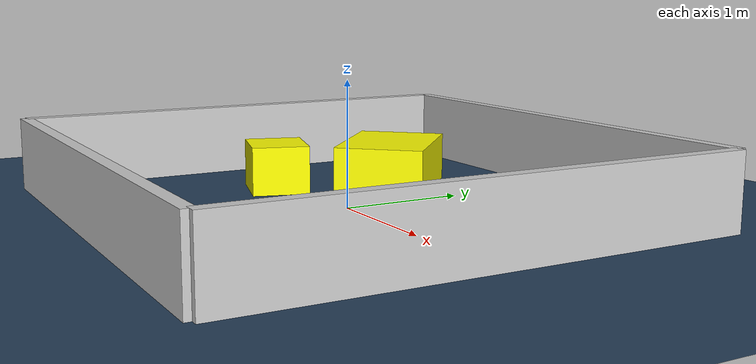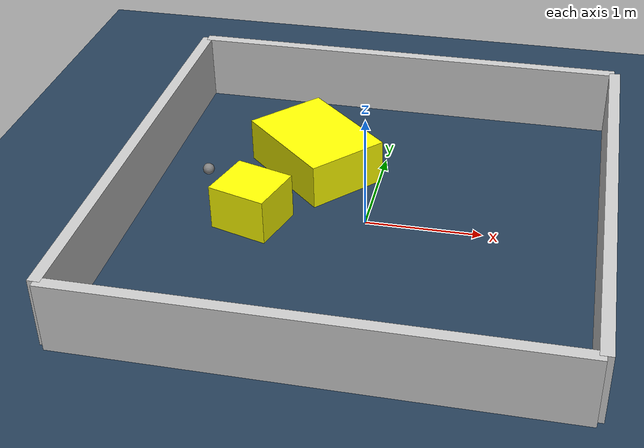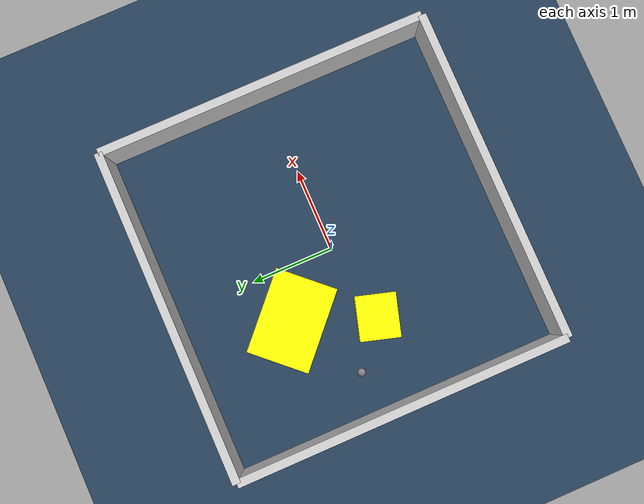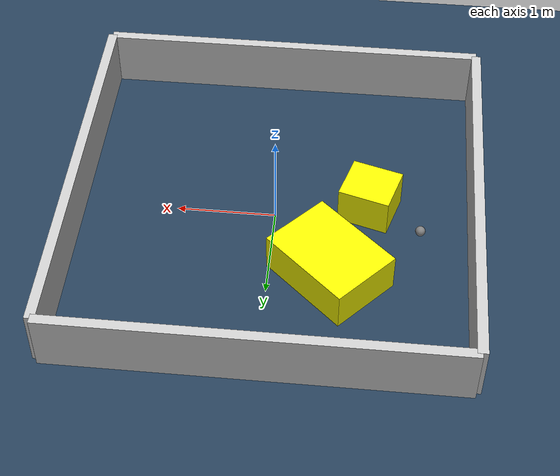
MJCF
<?xml version="1.0" ?>
<mujoco model="generated_environment">
  <option timestep="0.01" integrator="RK4" cone="elliptic"/>
  <default>
    <geom density="1"/>
  </default>
  <asset>
    <texture builtin="gradient" height="3072" rgb1="0.3 0.5 0.7" rgb2="0 0 0" type="skybox" width="512"/>
    <texture builtin="checker" height="300" mark="edge" markrgb="0.8 0.8 0.8" name="groundplane" rgb1="0.2 0.3 0.4" rgb2="0.1 0.2 0.3" type="2d" width="300"/>
    <material name="groundplane" reflectance="0.2" texrepeat="5 5" texture="groundplane" texuniform="true"/>
    <material name="robot" rgba="0.0 1.0 0.0 1"/>
  </asset>
  <worldbody>
    <light dir="0 0 -1" directional="true" pos="0 0 1.5"/>
    <geom condim="4" friction="1.0 0.005 0.001" material="groundplane" name="floor" size="0 0 0.05" type="plane"/>
    <body name="walls">
      <geom name="wall_1" condim="4" pos="-2.0 0.0 0.3" rgba="0.800000011920929 0.800000011920929 0.800000011920929 1.0" size="0.05 2.0 0.3" type="box"/>
      <geom name="wall_2" condim="4" pos="2.0 0.0 0.3" rgba="0.800000011920929 0.800000011920929 0.800000011920929 1.0" size="0.05 2.0 0.3" type="box"/>
      <geom name="wall_3" condim="4" pos="0.0 -2.0 0.3" rgba="0.800000011920929 0.800000011920929 0.800000011920929 1.0" size="2.0 0.05 0.3" type="box"/>
      <geom name="wall_4" condim="4" pos="0.0 2.0 0.3" rgba="0.800000011920929 0.800000011920929 0.800000011920929 1.0" size="2.0 0.05 0.3" type="box"/>
    </body>
    <body name="robot">
      <joint name="joint_x" type="slide" pos="0 0 0" axis="1 0 0"/>
      <joint name="joint_y" type="slide" pos="0 0 0" axis="0 1 0"/>
      <geom name="robot" type="sphere" pos="-1.4635917786988129 0.25656843399912743 0.2" size="0.05" mass="5." friction="1.0 0.005 0.0001" condim="4"/>
      <site name="sensor_ball"/>
    </body>
    <body name="obstacle_1_movable">
      <geom name="obstacle_1_movable" condim="4" pos="-0.6004201114298897 0.7441236346580264 0.2" euler="0 0 317.3544743964655" friction="1.0 0.005 0.001" rgba="1 1 0 1" size="0.5057447360783804 0.36979639801661723 0.2" type="box" mass="0.1"/>
      <joint type="free"/>
    </body>
    <body name="obstacle_2_movable">
      <geom name="obstacle_2_movable" condim="4" pos="-0.949066784285912 -0.16440474465505917 0.2" euler="0 0 253.56785739798318" friction="1.0 0.005 0.001" rgba="1 1 0 1" size="0.23732994551429282 0.2611128759655497 0.2" type="box" mass="0.1"/>
      <joint type="free"/>
    </body>
  </worldbody>
  <actuator>
    <motor name="actuator_x" joint="joint_x" gear="1" ctrlrange="-1 1"/>
    <motor name="actuator_y" joint="joint_y" gear="1" ctrlrange="-1 1"/>
  </actuator>
</mujoco>
